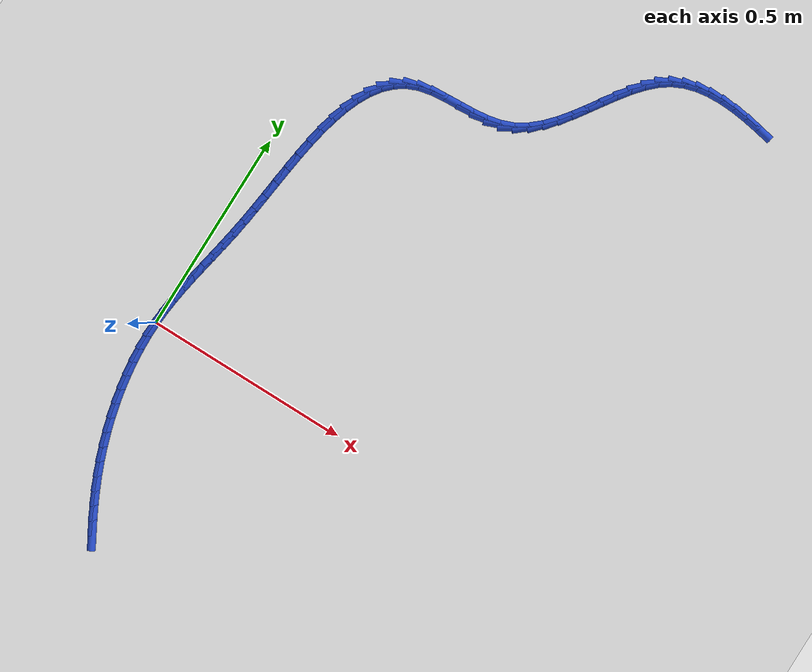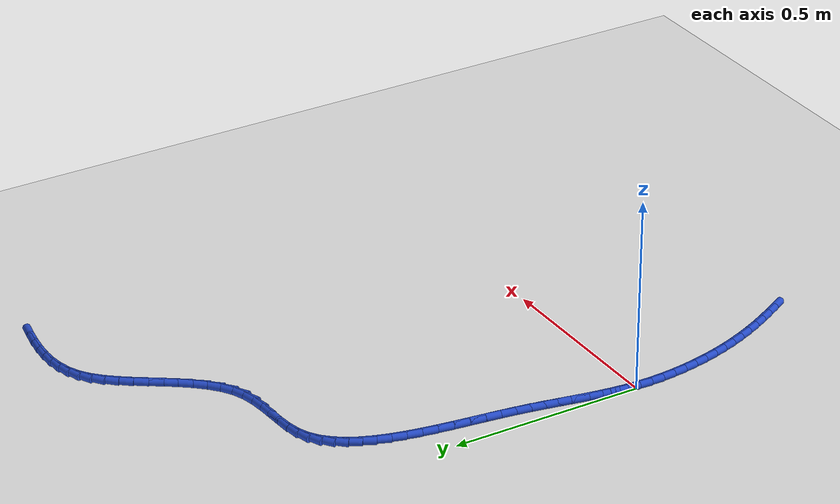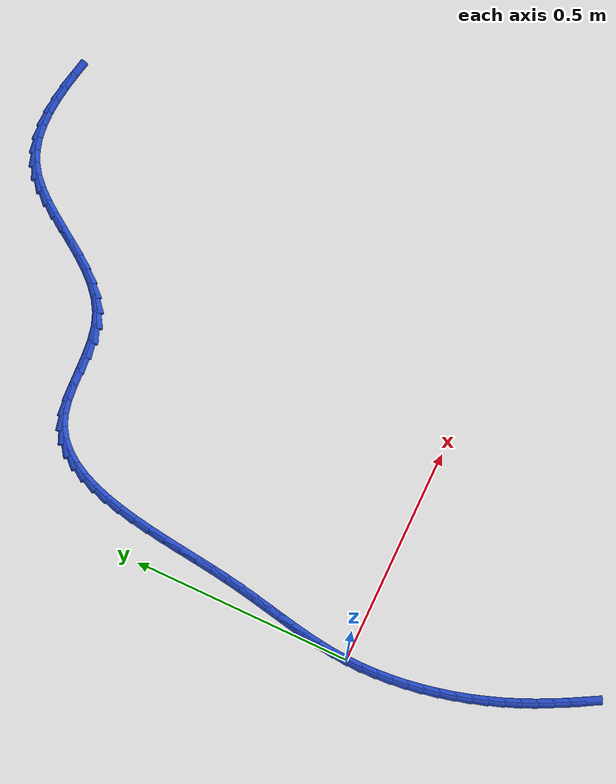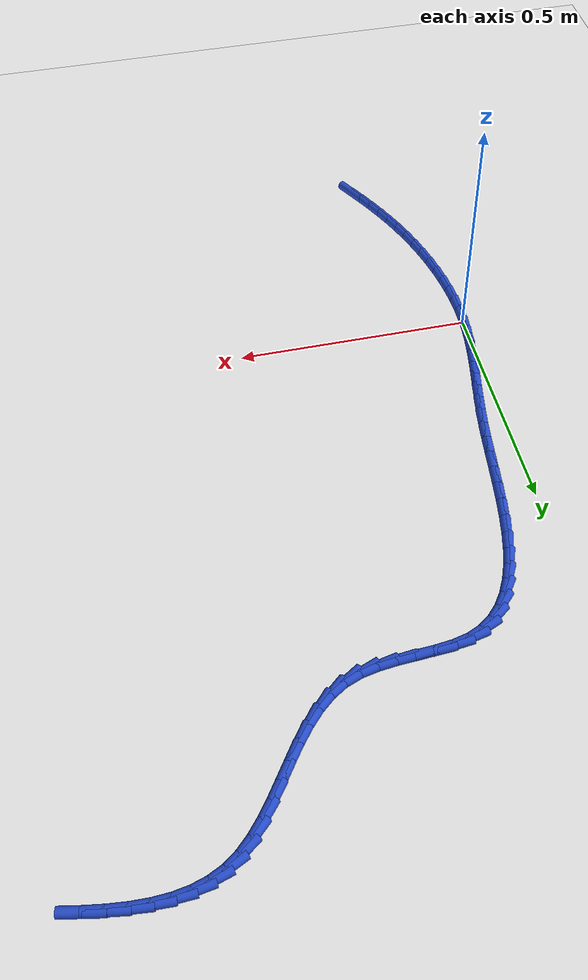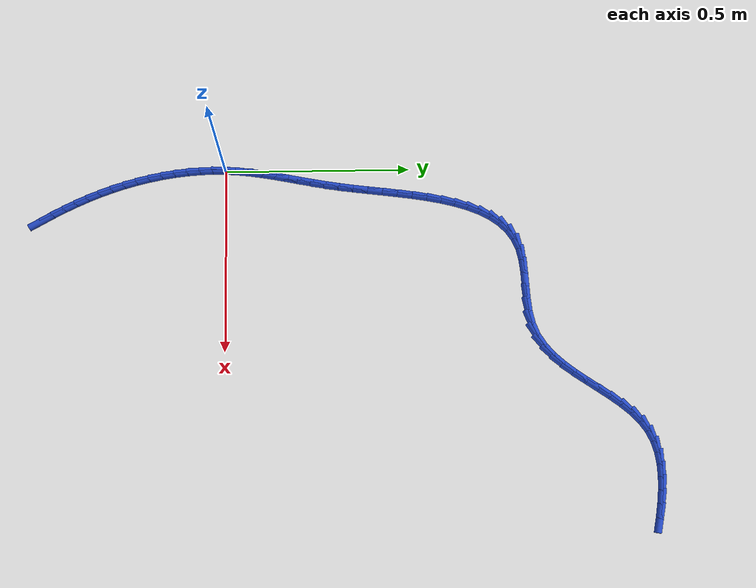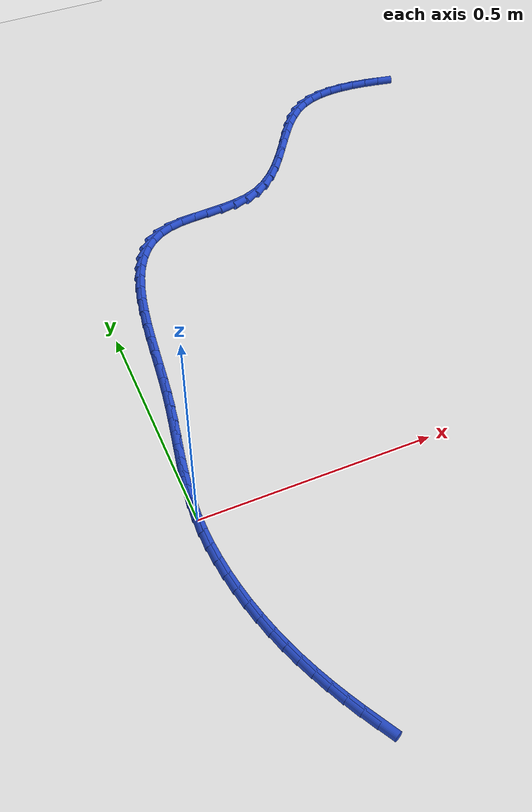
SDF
<sdf version="1.6">
 <world name="default">
  <model name="ground_plane">
   <static>1</static>
   <link name="link">
    <collision name="collision">
     <geometry><plane><normal>0 0 1</normal><size>100 100</size></plane></geometry>
     <surface><friction><ode><mu>100</mu><mu2>50</mu2></ode></friction></surface>
    </collision>
    <visual name="visual">
     <cast_shadows>0</cast_shadows>
     <geometry><plane><normal>0 0 1</normal><size>100 100</size></plane></geometry>
     <material>
      <script><uri>file://media/materials/scripts/gazebo.material</uri><name>Gazebo/WhiteGlow</name></script>
     </material>
    </visual>
   </link>
  </model>
  <model name="line">
   <link name="link_0">
    <pose>-1.3877787807814457e-17 3.469446951953614e-17 0.01 0 1.57 1.5041577624133293</pose>
    <collision name="collision">
     <geometry><cylinder><radius>0.01</radius><length>0.08</length></cylinder></geometry>
    </collision>
    <visual name="visual">
     <material>
      <script><name>Gazebo/Blue</name><uri>file://media/materials/scripts/gazebo.material</uri></script>
     </material>
     <geometry><cylinder><radius>0.01</radius><length>0.08</length></cylinder></geometry>
    </visual>
   </link>
   <link name="link_1">
    <pose>0.0022216014161387993 0.03328871165796133 0.01 0 1.57 1.460614309213795</pose>
    <collision name="collision">
     <geometry><cylinder><radius>0.01</radius><length>0.08</length></cylinder></geometry>
    </collision>
    <visual name="visual">
     <material>
      <script><name>Gazebo/Blue</name><uri>file://media/materials/scripts/gazebo.material</uri></script>
     </material>
     <geometry><cylinder><radius>0.01</radius><length>0.08</length></cylinder></geometry>
    </visual>
   </link>
   <link name="link_2">
    <pose>0.005868797262017491 0.06625620387892209 0.01 0 1.57 1.4257154996217285</pose>
    <collision name="collision">
     <geometry><cylinder><radius>0.01</radius><length>0.08</length></cylinder></geometry>
    </collision>
    <visual name="visual">
     <material>
      <script><name>Gazebo/Blue</name><uri>file://media/materials/scripts/gazebo.material</uri></script>
     </material>
     <geometry><cylinder><radius>0.01</radius><length>0.08</length></cylinder></geometry>
    </visual>
   </link>
   <link name="link_3">
    <pose>0.01067267405056408 0.0991352877429741 0.01 0 1.57 1.400121704988857</pose>
    <collision name="collision">
     <geometry><cylinder><radius>0.01</radius><length>0.08</length></cylinder></geometry>
    </collision>
    <visual name="visual">
     <material>
      <script><name>Gazebo/Blue</name><uri>file://media/materials/scripts/gazebo.material</uri></script>
     </material>
     <geometry><cylinder><radius>0.01</radius><length>0.08</length></cylinder></geometry>
    </visual>
   </link>
   <link name="link_4">
    <pose>0.016364318294706602 0.13215877433020912 0.01 0 1.57 1.3840642982871783</pose>
    <collision name="collision">
     <geometry><cylinder><radius>0.01</radius><length>0.08</length></cylinder></geometry>
    </collision>
    <visual name="visual">
     <material>
      <script><name>Gazebo/Blue</name><uri>file://media/materials/scripts/gazebo.material</uri></script>
     </material>
     <geometry><cylinder><radius>0.01</radius><length>0.08</length></cylinder></geometry>
    </visual>
   </link>
   <link name="link_5">
    <pose>0.022674816507373064 0.16555947472071889 0.01 0 1.57 1.377410227121792</pose>
    <collision name="collision">
     <geometry><cylinder><radius>0.01</radius><length>0.08</length></cylinder></geometry>
    </collision>
    <visual name="visual">
     <material>
      <script><name>Gazebo/Blue</name><uri>file://media/materials/scripts/gazebo.material</uri></script>
     </material>
     <geometry><cylinder><radius>0.01</radius><length>0.08</length></cylinder></geometry>
    </visual>
   </link>
   <link name="link_6">
    <pose>0.029335255201491512 0.1995701999945952 0.01 0 1.57 1.3797331357902005</pose>
    <collision name="collision">
     <geometry><cylinder><radius>0.01</radius><length>0.08</length></cylinder></geometry>
    </collision>
    <visual name="visual">
     <material>
      <script><name>Gazebo/Blue</name><uri>file://media/materials/scripts/gazebo.material</uri></script>
     </material>
     <geometry><cylinder><radius>0.01</radius><length>0.08</length></cylinder></geometry>
    </visual>
   </link>
   <link name="link_7">
    <pose>0.03607672088998996 0.23442376123192987 0.01 0 1.57 1.390377217215085</pose>
    <collision name="collision">
     <geometry><cylinder><radius>0.01</radius><length>0.08</length></cylinder></geometry>
    </collision>
    <visual name="visual">
     <material>
      <script><name>Gazebo/Blue</name><uri>file://media/materials/scripts/gazebo.material</uri></script>
     </material>
     <geometry><cylinder><radius>0.01</radius><length>0.08</length></cylinder></geometry>
    </visual>
   </link>
   <link name="link_8">
    <pose>0.04263030008579644 0.27035296951281457 0.01 0 1.57 1.408510063824198</pose>
    <collision name="collision">
     <geometry><cylinder><radius>0.01</radius><length>0.08</length></cylinder></geometry>
    </collision>
    <visual name="visual">
     <material>
      <script><name>Gazebo/Blue</name><uri>file://media/materials/scripts/gazebo.material</uri></script>
     </material>
     <geometry><cylinder><radius>0.01</radius><length>0.08</length></cylinder></geometry>
    </visual>
   </link>
   <link name="link_9">
    <pose>0.04872707930183896 0.30759063591734104 0.01 0 1.57 1.4306113998912529</pose>
    <collision name="collision">
     <geometry><cylinder><radius>0.01</radius><length>0.08</length></cylinder></geometry>
    </collision>
    <visual name="visual">
     <material>
      <script><name>Gazebo/Blue</name><uri>file://media/materials/scripts/gazebo.material</uri></script>
     </material>
     <geometry><cylinder><radius>0.01</radius><length>0.08</length></cylinder></geometry>
    </visual>
   </link>
   <link name="link_10">
    <pose>0.054184597166854365 0.3462661270600283 0.01 0 1.57 1.4451936399020995</pose>
    <collision name="collision">
     <geometry><cylinder><radius>0.01</radius><length>0.08</length></cylinder></geometry>
    </collision>
    <visual name="visual">
     <material>
      <script><name>Gazebo/Blue</name><uri>file://media/materials/scripts/gazebo.material</uri></script>
     </material>
     <geometry><cylinder><radius>0.01</radius><length>0.08</length></cylinder></geometry>
    </visual>
   </link>
   <link name="link_11">
    <pose>0.05920745579965627 0.3860456679017837 0.01 0 1.57 1.450132228644873</pose>
    <collision name="collision">
     <geometry><cylinder><radius>0.01</radius><length>0.08</length></cylinder></geometry>
    </collision>
    <visual name="visual">
     <material>
      <script><name>Gazebo/Blue</name><uri>file://media/materials/scripts/gazebo.material</uri></script>
     </material>
     <geometry><cylinder><radius>0.01</radius><length>0.08</length></cylinder></geometry>
    </visual>
   </link>
   <link name="link_12">
    <pose>0.0641085384176914 0.42646591942147716 0.01 0 1.57 1.4460171008260039</pose>
    <collision name="collision">
     <geometry><cylinder><radius>0.01</radius><length>0.08</length></cylinder></geometry>
    </collision>
    <visual name="visual">
     <material>
      <script><name>Gazebo/Blue</name><uri>file://media/materials/scripts/gazebo.material</uri></script>
     </material>
     <geometry><cylinder><radius>0.01</radius><length>0.08</length></cylinder></geometry>
    </visual>
   </link>
   <link name="link_13">
    <pose>0.06920073336715214 0.46706353646116755 0.01 0 1.57 1.432854624688631</pose>
    <collision name="collision">
     <geometry><cylinder><radius>0.01</radius><length>0.08</length></cylinder></geometry>
    </collision>
    <visual name="visual">
     <material>
      <script><name>Gazebo/Blue</name><uri>file://media/materials/scripts/gazebo.material</uri></script>
     </material>
     <geometry><cylinder><radius>0.01</radius><length>0.08</length></cylinder></geometry>
    </visual>
   </link>
   <link name="link_14">
    <pose>0.07479692899423082 0.5073751738629132 0.01 0 1.57 1.4100933242397045</pose>
    <collision name="collision">
     <geometry><cylinder><radius>0.01</radius><length>0.08</length></cylinder></geometry>
    </collision>
    <visual name="visual">
     <material>
      <script><name>Gazebo/Blue</name><uri>file://media/materials/scripts/gazebo.material</uri></script>
     </material>
     <geometry><cylinder><radius>0.01</radius><length>0.08</length></cylinder></geometry>
    </visual>
   </link>
   <link name="link_15">
    <pose>0.08121001364511976 0.5469374864687723 0.01 0 1.57 1.3765887190114745</pose>
    <collision name="collision">
     <geometry><cylinder><radius>0.01</radius><length>0.08</length></cylinder></geometry>
    </collision>
    <visual name="visual">
     <material>
      <script><name>Gazebo/Blue</name><uri>file://media/materials/scripts/gazebo.material</uri></script>
     </material>
     <geometry><cylinder><radius>0.01</radius><length>0.08</length></cylinder></geometry>
    </visual>
   </link>
   <link name="link_16">
    <pose>0.08875287566601131 0.5852871291208035 0.01 0 1.57 1.3305164755266785</pose>
    <collision name="collision">
     <geometry><cylinder><radius>0.01</radius><length>0.08</length></cylinder></geometry>
    </collision>
    <visual name="visual">
     <material>
      <script><name>Gazebo/Blue</name><uri>file://media/materials/scripts/gazebo.material</uri></script>
     </material>
     <geometry><cylinder><radius>0.01</radius><length>0.08</length></cylinder></geometry>
    </visual>
   </link>
   <link name="link_17">
    <pose>0.09773840340309785 0.6219607566610653 0.01 0 1.57 1.2692541753248683</pose>
    <collision name="collision">
     <geometry><cylinder><radius>0.01</radius><length>0.08</length></cylinder></geometry>
    </collision>
    <visual name="visual">
     <material>
      <script><name>Gazebo/Blue</name><uri>file://media/materials/scripts/gazebo.material</uri></script>
     </material>
     <geometry><cylinder><radius>0.01</radius><length>0.08</length></cylinder></geometry>
    </visual>
   </link>
   <link name="link_18">
    <pose>0.10847948520257168 0.656495023931616 0.01 0 1.57 1.1892941572460245</pose>
    <collision name="collision">
     <geometry><cylinder><radius>0.01</radius><length>0.08</length></cylinder></geometry>
    </collision>
    <visual name="visual">
     <material>
      <script><name>Gazebo/Blue</name><uri>file://media/materials/scripts/gazebo.material</uri></script>
     </material>
     <geometry><cylinder><radius>0.01</radius><length>0.08</length></cylinder></geometry>
    </visual>
   </link>
   <link name="link_19">
    <pose>0.12128900941062515 0.6884265857745141 0.01 0 1.57 1.0863596173549557</pose>
    <collision name="collision">
     <geometry><cylinder><radius>0.01</radius><length>0.08</length></cylinder></geometry>
    </collision>
    <visual name="visual">
     <material>
      <script><name>Gazebo/Blue</name><uri>file://media/materials/scripts/gazebo.material</uri></script>
     </material>
     <geometry><cylinder><radius>0.01</radius><length>0.08</length></cylinder></geometry>
    </visual>
   </link>
   <link name="link_20">
    <pose>0.13647986437345067 0.717292097031818 0.01 0 1.57 0.9561134272143081</pose>
    <collision name="collision">
     <geometry><cylinder><radius>0.01</radius><length>0.08</length></cylinder></geometry>
    </collision>
    <visual name="visual">
     <material>
      <script><name>Gazebo/Blue</name><uri>file://media/materials/scripts/gazebo.material</uri></script>
     </material>
     <geometry><cylinder><radius>0.01</radius><length>0.08</length></cylinder></geometry>
    </visual>
   </link>
   <link name="link_21">
    <pose>0.15436493843724047 0.7426282125455862 0.01 0 1.57 0.7960805357936478</pose>
    <collision name="collision">
     <geometry><cylinder><radius>0.01</radius><length>0.08</length></cylinder></geometry>
    </collision>
    <visual name="visual">
     <material>
      <script><name>Gazebo/Blue</name><uri>file://media/materials/scripts/gazebo.material</uri></script>
     </material>
     <geometry><cylinder><radius>0.01</radius><length>0.08</length></cylinder></geometry>
    </visual>
   </link>
   <link name="link_22">
    <pose>0.17525711994818705 0.7639715871578772 0.01 0 1.57 0.6090265492266352</pose>
    <collision name="collision">
     <geometry><cylinder><radius>0.01</radius><length>0.08</length></cylinder></geometry>
    </collision>
    <visual name="visual">
     <material>
      <script><name>Gazebo/Blue</name><uri>file://media/materials/scripts/gazebo.material</uri></script>
     </material>
     <geometry><cylinder><radius>0.01</radius><length>0.08</length></cylinder></geometry>
    </visual>
   </link>
   <link name="link_23">
    <pose>0.19946929725248266 0.7808588757107495 0.01 0 1.57 0.4059798487005549</pose>
    <collision name="collision">
     <geometry><cylinder><radius>0.01</radius><length>0.08</length></cylinder></geometry>
    </collision>
    <visual name="visual">
     <material>
      <script><name>Gazebo/Blue</name><uri>file://media/materials/scripts/gazebo.material</uri></script>
     </material>
     <geometry><cylinder><radius>0.01</radius><length>0.08</length></cylinder></geometry>
    </visual>
   </link>
   <link name="link_24">
    <pose>0.22731354627591618 0.7928280029404364 0.01 0 1.57 0.2231014780276281</pose>
    <collision name="collision">
     <geometry><cylinder><radius>0.01</radius><length>0.08</length></cylinder></geometry>
    </collision>
    <visual name="visual">
     <material>
      <script><name>Gazebo/Blue</name><uri>file://media/materials/scripts/gazebo.material</uri></script>
     </material>
     <geometry><cylinder><radius>0.01</radius><length>0.08</length></cylinder></geometry>
    </visual>
   </link>
   <link name="link_25">
    <pose>0.2587537791636702 0.7999611083216062 0.01 0 1.57 0.11003937888747167</pose>
    <collision name="collision">
     <geometry><cylinder><radius>0.01</radius><length>0.08</length></cylinder></geometry>
    </collision>
    <visual name="visual">
     <material>
      <script><name>Gazebo/Blue</name><uri>file://media/materials/scripts/gazebo.material</uri></script>
     </material>
     <geometry><cylinder><radius>0.01</radius><length>0.08</length></cylinder></geometry>
    </visual>
   </link>
   <link name="link_26">
    <pose>0.29286492438994505 0.8037299015338724 0.01 0 1.57 0.058582114916161374</pose>
    <collision name="collision">
     <geometry><cylinder><radius>0.01</radius><length>0.08</length></cylinder></geometry>
    </collision>
    <visual name="visual">
     <material>
      <script><name>Gazebo/Blue</name><uri>file://media/materials/scripts/gazebo.material</uri></script>
     </material>
     <geometry><cylinder><radius>0.01</radius><length>0.08</length></cylinder></geometry>
    </visual>
   </link>
   <link name="link_27">
    <pose>0.32858206534871304 0.8058246840748297 0.01 0 1.57 0.05815764598075501</pose>
    <collision name="collision">
     <geometry><cylinder><radius>0.01</radius><length>0.08</length></cylinder></geometry>
    </collision>
    <visual name="visual">
     <material>
      <script><name>Gazebo/Blue</name><uri>file://media/materials/scripts/gazebo.material</uri></script>
     </material>
     <geometry><cylinder><radius>0.01</radius><length>0.08</length></cylinder></geometry>
    </visual>
   </link>
   <link name="link_28">
    <pose>0.364840285433946 0.8079357574420722 0.01 0 1.57 0.10643082712850482</pose>
    <collision name="collision">
     <geometry><cylinder><radius>0.01</radius><length>0.08</length></cylinder></geometry>
    </collision>
    <visual name="visual">
     <material>
      <script><name>Gazebo/Blue</name><uri>file://media/materials/scripts/gazebo.material</uri></script>
     </material>
     <geometry><cylinder><radius>0.01</radius><length>0.08</length></cylinder></geometry>
    </visual>
   </link>
   <link name="link_29">
    <pose>0.4005746680396163 0.8117534231331952 0.01 0 1.57 0.2082254150575818</pose>
    <collision name="collision">
     <geometry><cylinder><radius>0.01</radius><length>0.08</length></cylinder></geometry>
    </collision>
    <visual name="visual">
     <material>
      <script><name>Gazebo/Blue</name><uri>file://media/materials/scripts/gazebo.material</uri></script>
     </material>
     <geometry><cylinder><radius>0.01</radius><length>0.08</length></cylinder></geometry>
    </visual>
   </link>
   <link name="link_30">
    <pose>0.43472029655969624 0.8189679826457921 0.01 0 1.57 0.3712065709629593</pose>
    <collision name="collision">
     <geometry><cylinder><radius>0.01</radius><length>0.08</length></cylinder></geometry>
    </collision>
    <visual name="visual">
     <material>
      <script><name>Gazebo/Blue</name><uri>file://media/materials/scripts/gazebo.material</uri></script>
     </material>
     <geometry><cylinder><radius>0.01</radius><length>0.08</length></cylinder></geometry>
    </visual>
   </link>
   <link name="link_31">
    <pose>0.4662327787159836 0.8312342761080657 0.01 0 1.57 0.558101284543423</pose>
    <collision name="collision">
     <geometry><cylinder><radius>0.01</radius><length>0.08</length></cylinder></geometry>
    </collision>
    <visual name="visual">
     <material>
      <script><name>Gazebo/Blue</name><uri>file://media/materials/scripts/gazebo.material</uri></script>
     </material>
     <geometry><cylinder><radius>0.01</radius><length>0.08</length></cylinder></geometry>
    </visual>
   </link>
   <link name="link_32">
    <pose>0.49474597275948046 0.8490352810293224 0.01 0 1.57 0.7119532725827579</pose>
    <collision name="collision">
     <geometry><cylinder><radius>0.01</radius><length>0.08</length></cylinder></geometry>
    </collision>
    <visual name="visual">
     <material>
      <script><name>Gazebo/Blue</name><uri>file://media/materials/scripts/gazebo.material</uri></script>
     </material>
     <geometry><cylinder><radius>0.01</radius><length>0.08</length></cylinder></geometry>
    </visual>
   </link>
   <link name="link_33">
    <pose>0.5207112431086849 0.8714415102363451 0.01 0 1.57 0.8270540318147703</pose>
    <collision name="collision">
     <geometry><cylinder><radius>0.01</radius><length>0.08</length></cylinder></geometry>
    </collision>
    <visual name="visual">
     <material>
      <script><name>Gazebo/Blue</name><uri>file://media/materials/scripts/gazebo.material</uri></script>
     </material>
     <geometry><cylinder><radius>0.01</radius><length>0.08</length></cylinder></geometry>
    </visual>
   </link>
   <link name="link_34">
    <pose>0.5446286344524531 0.8974393681230386 0.01 0 1.57 0.9066239495584035</pose>
    <collision name="collision">
     <geometry><cylinder><radius>0.01</radius><length>0.08</length></cylinder></geometry>
    </collision>
    <visual name="visual">
     <material>
      <script><name>Gazebo/Blue</name><uri>file://media/materials/scripts/gazebo.material</uri></script>
     </material>
     <geometry><cylinder><radius>0.01</radius><length>0.08</length></cylinder></geometry>
    </visual>
   </link>
   <link name="link_35">
    <pose>0.5669981914796409 0.9260152590833077 0.01 0 1.57 0.9551101302700191</pose>
    <collision name="collision">
     <geometry><cylinder><radius>0.01</radius><length>0.08</length></cylinder></geometry>
    </collision>
    <visual name="visual">
     <material>
      <script><name>Gazebo/Blue</name><uri>file://media/materials/scripts/gazebo.material</uri></script>
     </material>
     <geometry><cylinder><radius>0.01</radius><length>0.08</length></cylinder></geometry>
    </visual>
   </link>
   <link name="link_36">
    <pose>0.5883199588791046 0.9561555875110571 0.01 0 1.57 0.9757610906334523</pose>
    <collision name="collision">
     <geometry><cylinder><radius>0.01</radius><length>0.08</length></cylinder></geometry>
    </collision>
    <visual name="visual">
     <material>
      <script><name>Gazebo/Blue</name><uri>file://media/materials/scripts/gazebo.material</uri></script>
     </material>
     <geometry><cylinder><radius>0.01</radius><length>0.08</length></cylinder></geometry>
    </visual>
   </link>
   <link name="link_37">
    <pose>0.6090939813397004 0.9868467578001916 0.01 0 1.57 0.9697616096306702</pose>
    <collision name="collision">
     <geometry><cylinder><radius>0.01</radius><length>0.08</length></cylinder></geometry>
    </collision>
    <visual name="visual">
     <material>
      <script><name>Gazebo/Blue</name><uri>file://media/materials/scripts/gazebo.material</uri></script>
     </material>
     <geometry><cylinder><radius>0.01</radius><length>0.08</length></cylinder></geometry>
    </visual>
   </link>
   <link name="link_38">
    <pose>0.6298203035502841 1.0170751743446156 0.01 0 1.57 0.93592891255605</pose>
    <collision name="collision">
     <geometry><cylinder><radius>0.01</radius><length>0.08</length></cylinder></geometry>
    </collision>
    <visual name="visual">
     <material>
      <script><name>Gazebo/Blue</name><uri>file://media/materials/scripts/gazebo.material</uri></script>
     </material>
     <geometry><cylinder><radius>0.01</radius><length>0.08</length></cylinder></geometry>
    </visual>
   </link>
   <link name="link_39">
    <pose>0.6509989701997118 1.045827241538234 0.01 0 1.57 0.8705563560619634</pose>
    <collision name="collision">
     <geometry><cylinder><radius>0.01</radius><length>0.08</length></cylinder></geometry>
    </collision>
    <visual name="visual">
     <material>
      <script><name>Gazebo/Blue</name><uri>file://media/materials/scripts/gazebo.material</uri></script>
     </material>
     <geometry><cylinder><radius>0.01</radius><length>0.08</length></cylinder></geometry>
    </visual>
   </link>
   <link name="link_40">
    <pose>0.6731300259768396 1.0720893637749513 0.01 0 1.57 0.767599631983861</pose>
    <collision name="collision">
     <geometry><cylinder><radius>0.01</radius><length>0.08</length></cylinder></geometry>
    </collision>
    <visual name="visual">
     <material>
      <script><name>Gazebo/Blue</name><uri>file://media/materials/scripts/gazebo.material</uri></script>
     </material>
     <geometry><cylinder><radius>0.01</radius><length>0.08</length></cylinder></geometry>
    </visual>
   </link>
   <link name="link_41">
    <pose>0.6967135155705237 1.0948479454486724 0.01 0 1.57 0.620652015036451</pose>
    <collision name="collision">
     <geometry><cylinder><radius>0.01</radius><length>0.08</length></cylinder></geometry>
    </collision>
    <visual name="visual">
     <material>
      <script><name>Gazebo/Blue</name><uri>file://media/materials/scripts/gazebo.material</uri></script>
     </material>
     <geometry><cylinder><radius>0.01</radius><length>0.08</length></cylinder></geometry>
    </visual>
   </link>
   <link name="link_42">
    <pose>0.7222445313142545 1.1130999100606684 0.01 0 1.57 0.4482213147575738</pose>
    <collision name="collision">
     <geometry><cylinder><radius>0.01</radius><length>0.08</length></cylinder></geometry>
    </collision>
    <visual name="visual">
     <material>
      <script><name>Gazebo/Blue</name><uri>file://media/materials/scripts/gazebo.material</uri></script>
     </material>
     <geometry><cylinder><radius>0.01</radius><length>0.08</length></cylinder></geometry>
    </visual>
   </link>
   <link name="link_43">
    <pose>0.7499459040268344 1.1264204813134737 0.01 0 1.57 0.289160623994503</pose>
    <collision name="collision">
     <geometry><cylinder><radius>0.01</radius><length>0.08</length></cylinder></geometry>
    </collision>
    <visual name="visual">
     <material>
      <script><name>Gazebo/Blue</name><uri>file://media/materials/scripts/gazebo.material</uri></script>
     </material>
     <geometry><cylinder><radius>0.01</radius><length>0.08</length></cylinder></geometry>
    </visual>
   </link>
   <link name="link_44">
    <pose>0.7796321753796946 1.1352521141683964 0.01 0 1.57 0.15319760592363502</pose>
    <collision name="collision">
     <geometry><cylinder><radius>0.01</radius><length>0.08</length></cylinder></geometry>
    </collision>
    <visual name="visual">
     <material>
      <script><name>Gazebo/Blue</name><uri>file://media/materials/scripts/gazebo.material</uri></script>
     </material>
     <geometry><cylinder><radius>0.01</radius><length>0.08</length></cylinder></geometry>
    </visual>
   </link>
   <link name="link_45">
    <pose>0.8110843209900218 1.1401085599502714 0.01 0 1.57 0.04224916205095813</pose>
    <collision name="collision">
     <geometry><cylinder><radius>0.01</radius><length>0.08</length></cylinder></geometry>
    </collision>
    <visual name="visual">
     <material>
      <script><name>Gazebo/Blue</name><uri>file://media/materials/scripts/gazebo.material</uri></script>
     </material>
     <geometry><cylinder><radius>0.01</radius><length>0.08</length></cylinder></geometry>
    </visual>
   </link>
   <link name="link_46">
    <pose>0.8440833164750022 1.1415035699839324 0.01 0 1.57 -0.045201295922695624</pose>
    <collision name="collision">
     <geometry><cylinder><radius>0.01</radius><length>0.08</length></cylinder></geometry>
    </collision>
    <visual name="visual">
     <material>
      <script><name>Gazebo/Blue</name><uri>file://media/materials/scripts/gazebo.material</uri></script>
     </material>
     <geometry><cylinder><radius>0.01</radius><length>0.08</length></cylinder></geometry>
    </visual>
   </link>
   <link name="link_47">
    <pose>0.8784101374518226 1.1399508955942144 0.01 0 1.57 -0.11203174927479957</pose>
    <collision name="collision">
     <geometry><cylinder><radius>0.01</radius><length>0.08</length></cylinder></geometry>
    </collision>
    <visual name="visual">
     <material>
      <script><name>Gazebo/Blue</name><uri>file://media/materials/scripts/gazebo.material</uri></script>
     </material>
     <geometry><cylinder><radius>0.01</radius><length>0.08</length></cylinder></geometry>
    </visual>
   </link>
   <link name="link_48">
    <pose>0.9138457595376692 1.1359642881059522 0.01 0 1.57 -0.16119682417151132</pose>
    <collision name="collision">
     <geometry><cylinder><radius>0.01</radius><length>0.08</length></cylinder></geometry>
    </collision>
    <visual name="visual">
     <material>
      <script><name>Gazebo/Blue</name><uri>file://media/materials/scripts/gazebo.material</uri></script>
     </material>
     <geometry><cylinder><radius>0.01</radius><length>0.08</length></cylinder></geometry>
    </visual>
   </link>
   <link name="link_49">
    <pose>0.950171158349729 1.1300574988439802 0.01 0 1.57 -0.19515913053303435</pose>
    <collision name="collision">
     <geometry><cylinder><radius>0.01</radius><length>0.08</length></cylinder></geometry>
    </collision>
    <visual name="visual">
     <material>
      <script><name>Gazebo/Blue</name><uri>file://media/materials/scripts/gazebo.material</uri></script>
     </material>
     <geometry><cylinder><radius>0.01</radius><length>0.08</length></cylinder></geometry>
    </visual>
   </link>
   <link name="link_185">
    <pose>0.13515910453739288 -0.49622714113872507 0.01 0 1.57 -1.0667780988656939</pose>
    <collision name="collision">
     <geometry><cylinder><radius>0.01</radius><length>0.08</length></cylinder></geometry>
    </collision>
    <visual name="visual">
     <material>
      <script><name>Gazebo/Blue</name><uri>file://media/materials/scripts/gazebo.material</uri></script>
     </material>
     <geometry><cylinder><radius>0.01</radius><length>0.08</length></cylinder></geometry>
    </visual>
   </link>
   <link name="link_186">
    <pose>0.1184478680597165 -0.4659274429514899 0.01 0 1.57 -1.0926289113749392</pose>
    <collision name="collision">
     <geometry><cylinder><radius>0.01</radius><length>0.08</length></cylinder></geometry>
    </collision>
    <visual name="visual">
     <material>
      <script><name>Gazebo/Blue</name><uri>file://media/materials/scripts/gazebo.material</uri></script>
     </material>
     <geometry><cylinder><radius>0.01</radius><length>0.08</length></cylinder></geometry>
    </visual>
   </link>
   <link name="link_187">
    <pose>0.10255658352474815 -0.4352660850144771 0.01 0 1.57 -1.121066254513282</pose>
    <collision name="collision">
     <geometry><cylinder><radius>0.01</radius><length>0.08</length></cylinder></geometry>
    </collision>
    <visual name="visual">
     <material>
      <script><name>Gazebo/Blue</name><uri>file://media/materials/scripts/gazebo.material</uri></script>
     </material>
     <geometry><cylinder><radius>0.01</radius><length>0.08</length></cylinder></geometry>
    </visual>
   </link>
   <link name="link_188">
    <pose>0.08755146862612091 -0.4041817159296726 0.01 0 1.57 -1.1519854433744392</pose>
    <collision name="collision">
     <geometry><cylinder><radius>0.01</radius><length>0.08</length></cylinder></geometry>
    </collision>
    <visual name="visual">
     <material>
      <script><name>Gazebo/Blue</name><uri>file://media/materials/scripts/gazebo.material</uri></script>
     </material>
     <geometry><cylinder><radius>0.01</radius><length>0.08</length></cylinder></geometry>
    </visual>
   </link>
   <link name="link_189">
    <pose>0.07349874105746793 -0.3726129842990632 0.01 0 1.57 -1.1852443474616943</pose>
    <collision name="collision">
     <geometry><cylinder><radius>0.01</radius><length>0.08</length></cylinder></geometry>
    </collision>
    <visual name="visual">
     <material>
      <script><name>Gazebo/Blue</name><uri>file://media/materials/scripts/gazebo.material</uri></script>
     </material>
     <geometry><cylinder><radius>0.01</radius><length>0.08</length></cylinder></geometry>
    </visual>
   </link>
   <link name="link_190">
    <pose>0.06046461851242217 -0.3404985387246344 0.01 0 1.57 -1.2206610468571018</pose>
    <collision name="collision">
     <geometry><cylinder><radius>0.01</radius><length>0.08</length></cylinder></geometry>
    </collision>
    <visual name="visual">
     <material>
      <script><name>Gazebo/Blue</name><uri>file://media/materials/scripts/gazebo.material</uri></script>
     </material>
     <geometry><cylinder><radius>0.01</radius><length>0.08</length></cylinder></geometry>
    </visual>
   </link>
   <link name="link_191">
    <pose>0.04851531863341597 -0.30777702953934016 0.01 0 1.57 -1.2576632764888345</pose>
    <collision name="collision">
     <geometry><cylinder><radius>0.01</radius><length>0.08</length></cylinder></geometry>
    </collision>
    <visual name="visual">
     <material>
      <script><name>Gazebo/Blue</name><uri>file://media/materials/scripts/gazebo.material</uri></script>
     </material>
     <geometry><cylinder><radius>0.01</radius><length>0.08</length></cylinder></geometry>
    </visual>
   </link>
   <link name="link_192">
    <pose>0.037715978081011896 -0.2744236522769714 0.01 0 1.57 -1.2950014940297827</pose>
    <collision name="collision">
     <geometry><cylinder><radius>0.01</radius><length>0.08</length></cylinder></geometry>
    </collision>
    <visual name="visual">
     <material>
      <script><name>Gazebo/Blue</name><uri>file://media/materials/scripts/gazebo.material</uri></script>
     </material>
     <geometry><cylinder><radius>0.01</radius><length>0.08</length></cylinder></geometry>
    </visual>
   </link>
   <link name="link_193">
    <pose>0.028127869419262416 -0.2405442375790144 0.01 0 1.57 -1.3327266783246918</pose>
    <collision name="collision">
     <geometry><cylinder><radius>0.01</radius><length>0.08</length></cylinder></geometry>
    </collision>
    <visual name="visual">
     <material>
      <script><name>Gazebo/Blue</name><uri>file://media/materials/scripts/gazebo.material</uri></script>
     </material>
     <geometry><cylinder><radius>0.01</radius><length>0.08</length></cylinder></geometry>
    </visual>
   </link>
   <link name="link_194">
    <pose>0.01981140215143738 -0.20627379393955467 0.01 0 1.57 -1.3711982042353095</pose>
    <collision name="collision">
     <geometry><cylinder><radius>0.01</radius><length>0.08</length></cylinder></geometry>
    </collision>
    <visual name="visual">
     <material>
      <script><name>Gazebo/Blue</name><uri>file://media/materials/scripts/gazebo.material</uri></script>
     </material>
     <geometry><cylinder><radius>0.01</radius><length>0.08</length></cylinder></geometry>
    </visual>
   </link>
   <link name="link_195">
    <pose>0.012826985780806436 -0.1717473298526772 0.01 0 1.57 -1.4107804344600043</pose>
    <collision name="collision">
     <geometry><cylinder><radius>0.01</radius><length>0.08</length></cylinder></geometry>
    </collision>
    <visual name="visual">
     <material>
      <script><name>Gazebo/Blue</name><uri>file://media/materials/scripts/gazebo.material</uri></script>
     </material>
     <geometry><cylinder><radius>0.01</radius><length>0.08</length></cylinder></geometry>
    </visual>
   </link>
   <link name="link_196">
    <pose>0.007235029810639204 -0.13709985381246714 0.01 0 1.57 -1.4518493646347808</pose>
    <collision name="collision">
     <geometry><cylinder><radius>0.01</radius><length>0.08</length></cylinder></geometry>
    </collision>
    <visual name="visual">
     <material>
      <script><name>Gazebo/Blue</name><uri>file://media/materials/scripts/gazebo.material</uri></script>
     </material>
     <geometry><cylinder><radius>0.01</radius><length>0.08</length></cylinder></geometry>
    </visual>
   </link>
   <link name="link_197">
    <pose>0.003095943744205318 -0.1024663743130094 0.01 0 1.57 -1.4947983749071883</pose>
    <collision name="collision">
     <geometry><cylinder><radius>0.01</radius><length>0.08</length></cylinder></geometry>
    </collision>
    <visual name="visual">
     <material>
      <script><name>Gazebo/Blue</name><uri>file://media/materials/scripts/gazebo.material</uri></script>
     </material>
     <geometry><cylinder><radius>0.01</radius><length>0.08</length></cylinder></geometry>
    </visual>
   </link>
   <link name="link_198">
    <pose>0.0004701370847743974 -0.06798189984838893 0.01 0 1.57 -1.5400427635900051</pose>
    <collision name="collision">
     <geometry><cylinder><radius>0.01</radius><length>0.08</length></cylinder></geometry>
    </collision>
    <visual name="visual">
     <material>
      <script><name>Gazebo/Blue</name><uri>file://media/materials/scripts/gazebo.material</uri></script>
     </material>
     <geometry><cylinder><radius>0.01</radius><length>0.08</length></cylinder></geometry>
    </visual>
   </link>
   <link name="link_199">
    <pose>-0.0005819806643839265 -0.033781438912690774 0.01 0 1.57 1.5535702074676732</pose>
    <collision name="collision">
     <geometry><cylinder><radius>0.01</radius><length>0.08</length></cylinder></geometry>
    </collision>
    <visual name="visual">
     <material>
      <script><name>Gazebo/Blue</name><uri>file://media/materials/scripts/gazebo.material</uri></script>
     </material>
     <geometry><cylinder><radius>0.01</radius><length>0.08</length></cylinder></geometry>
    </visual>
   </link>
   <link name="link_200">
    <pose>-2.7755575615628914e-17 4.163336342344337e-17 0.01 0 1.57 1.50239085116925</pose>
    <collision name="collision">
     <geometry><cylinder><radius>0.01</radius><length>0.08</length></cylinder></geometry>
    </collision>
    <visual name="visual">
     <material>
      <script><name>Gazebo/Blue</name><uri>file://media/materials/scripts/gazebo.material</uri></script>
     </material>
     <geometry><cylinder><radius>0.01</radius><length>0.08</length></cylinder></geometry>
    </visual>
   </link>
   <link name="link_201">
    <pose>0.002276488581195793 0.03322740839559929 0.01 0 1.57 1.5023908511692505</pose>
    <collision name="collision">
     <geometry><cylinder><radius>0.01</radius><length>0.08</length></cylinder></geometry>
    </collision>
    <visual name="visual">
     <material>
      <script><name>Gazebo/Blue</name><uri>file://media/materials/scripts/gazebo.material</uri></script>
     </material>
     <geometry><cylinder><radius>0.01</radius><length>0.08</length></cylinder></geometry>
    </visual>
   </link>
  </model>
 </world>
</sdf>
